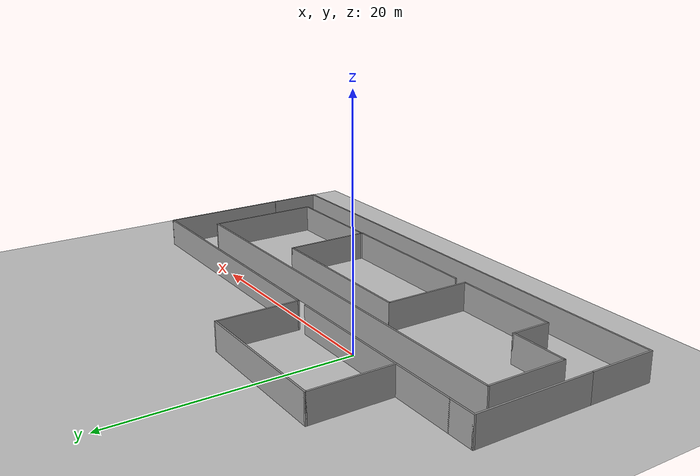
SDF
<sdf version="1.6">
 <world name="default">
  <light name="sun" type="directional">
   <pose>0 0 10 0 -0 0</pose>
   <diffuse>0.8 0.8 0.8 1</diffuse>
   <specular>0.1 0.1 0.1 1</specular>
   <attenuation>
    <range>1000</range>
    <constant>0.9</constant>
    <linear>0.01</linear>
    <quadratic>0.001</quadratic>
   </attenuation>
   <direction>-0.5 0.5 -1</direction>
  </light>
  <model name="ground_plane">
   <static>1</static>
   <link name="link">
    <collision name="collision">
     <geometry><plane><normal>0 0 1</normal><size>100 100</size></plane></geometry>
     <surface><friction><ode><mu>100</mu><mu2>50</mu2></ode></friction></surface>
    </collision>
    <visual name="visual">
     <cast_shadows>0</cast_shadows>
     <geometry><plane><normal>0 0 1</normal><size>100 100</size></plane></geometry>
     <material>
      <script><uri>file://media/materials/scripts/gazebo.material</uri><name>Gazebo/Grey</name></script>
     </material>
    </visual>
   </link>
  </model>
  <gravity>0 0 -9.8</gravity>
  <magnetic_field>6e-06 2.3e-05 -4.2e-05</magnetic_field>
  <atmosphere type="adiabatic"/>
  <physics name="default_physics" default="0" type="ode">
   <max_step_size>0.001</max_step_size>
   <real_time_factor>1</real_time_factor>
   <real_time_update_rate>1000</real_time_update_rate>
  </physics>
  <scene><ambient>0.4 0.4 0.4 1</ambient><background>0.7 0.7 0.7 1</background><shadows>1</shadows></scene>
  <spherical_coordinates>
   <surface_model>EARTH_WGS84</surface_model>
   <latitude_deg>0</latitude_deg>
   <longitude_deg>0</longitude_deg>
   <elevation>0</elevation>
   <heading_deg>0</heading_deg>
  </spherical_coordinates>
  <model name="office">
   <pose>7.83519 -3.40056 0 0 -0 0</pose>
   <link name="Wall_10">
    <collision name="Wall_10_Collision">
     <geometry><box><size>13.25 0.15 2.5</size></box></geometry>
     <pose>0 0 1.25 0 -0 0</pose>
    </collision>
    <visual name="Wall_10_Visual">
     <pose>0 0 1.25 0 -0 0</pose>
     <geometry><box><size>13.25 0.15 2.5</size></box></geometry>
     <material>
      <script><uri>file://media/materials/scripts/gazebo.material</uri><name>Gazebo/Grey</name></script>
      <ambient>1 1 1 1</ambient>
     </material>
    </visual>
    <pose>-8.08749 11.5399 0 0 -0 3.14159</pose>
   </link>
   <link name="Wall_11">
    <collision name="Wall_11_Collision">
     <geometry><box><size>7.25 0.15 2.5</size></box></geometry>
     <pose>0 0 1.25 0 -0 0</pose>
    </collision>
    <visual name="Wall_11_Visual">
     <pose>0 0 1.25 0 -0 0</pose>
     <geometry><box><size>7.25 0.15 2.5</size></box></geometry>
     <material>
      <script><uri>file://media/materials/scripts/gazebo.material</uri><name>Gazebo/Grey</name></script>
      <ambient>1 1 1 1</ambient>
     </material>
    </visual>
    <pose>-14.6375 7.98992 0 0 0 -1.5708</pose>
   </link>
   <link name="Wall_13">
    <collision name="Wall_13_Collision">
     <geometry><box><size>2.5 0.15 2.5</size></box></geometry>
     <pose>0 0 1.25 0 -0 0</pose>
    </collision>
    <visual name="Wall_13_Visual">
     <pose>0 0 1.25 0 -0 0</pose>
     <geometry><box><size>2.5 0.15 2.5</size></box></geometry>
     <material>
      <script><uri>file://media/materials/scripts/gazebo.material</uri><name>Gazebo/Grey</name></script>
      <ambient>1 1 1 1</ambient>
     </material>
    </visual>
    <pose>-21.6375 4.41008 0 0 -0 3.14159</pose>
   </link>
   <link name="Wall_14">
    <collision name="Wall_14_Collision">
     <geometry><box><size>10.25 0.15 2.5</size></box></geometry>
     <pose>0 0 1.25 0 -0 0</pose>
    </collision>
    <visual name="Wall_14_Visual">
     <pose>0 0 1.25 0 -0 0</pose>
     <geometry><box><size>10.25 0.15 2.5</size></box></geometry>
     <material>
      <script><uri>file://media/materials/scripts/gazebo.material</uri><name>Gazebo/Grey</name></script>
      <ambient>1 1 1 1</ambient>
     </material>
    </visual>
    <pose>-22.8125 -0.639918 0 0 0 -1.5708</pose>
   </link>
   <link name="Wall_16">
    <collision name="Wall_16_Collision">
     <geometry><box><size>7 0.15 2.5</size></box></geometry>
     <pose>0 0 1.25 0 -0 0</pose>
    </collision>
    <visual name="Wall_16_Visual">
     <pose>0 0 1.25 0 -0 0</pose>
     <geometry><box><size>7 0.15 2.5</size></box></geometry>
     <material>
      <script><uri>file://media/materials/scripts/gazebo.material</uri><name>Gazebo/Grey</name></script>
      <ambient>1 1 1 1</ambient>
     </material>
    </visual>
    <pose>-20.4736 -2.10439 0 0 0 -1.5708</pose>
   </link>
   <link name="Wall_17">
    <collision name="Wall_17_Collision">
     <geometry><box><size>5.25 0.15 2.5</size></box></geometry>
     <pose>0 0 1.25 0 -0 0</pose>
    </collision>
    <visual name="Wall_17_Visual">
     <pose>0 0 1.25 0 -0 0</pose>
     <geometry><box><size>5.25 0.15 2.5</size></box></geometry>
     <material>
      <script><uri>file://media/materials/scripts/gazebo.material</uri><name>Gazebo/Grey</name></script>
      <ambient>1 1 1 1</ambient>
     </material>
    </visual>
    <pose>-17.9236 -5.52939 0 0 -0 0</pose>
   </link>
   <link name="Wall_18">
    <collision name="Wall_18_Collision">
     <geometry><box><size>3.5 0.15 2.5</size></box></geometry>
     <pose>0 0 1.25 0 -0 0</pose>
    </collision>
    <visual name="Wall_18_Visual">
     <pose>0 0 1.25 0 -0 0</pose>
     <geometry><box><size>3.5 0.15 2.5</size></box></geometry>
     <material>
      <script><uri>file://media/materials/scripts/gazebo.material</uri><name>Gazebo/Grey</name></script>
      <ambient>1 1 1 1</ambient>
     </material>
    </visual>
    <pose>-15.3736 -7.20439 0 0 0 -1.5708</pose>
   </link>
   <link name="Wall_19">
    <collision name="Wall_19_Collision">
     <geometry><box><size>9.75 0.15 2.5</size></box></geometry>
     <pose>0 0 1.25 0 -0 0</pose>
    </collision>
    <visual name="Wall_19_Visual">
     <pose>0 0 1.25 0 -0 0</pose>
     <geometry><box><size>9.75 0.15 2.5</size></box></geometry>
     <material>
      <script><uri>file://media/materials/scripts/gazebo.material</uri><name>Gazebo/Grey</name></script>
      <ambient>1 1 1 1</ambient>
     </material>
    </visual>
    <pose>-10.5736 -8.8794 0 0 -0 0</pose>
   </link>
   <link name="Wall_2">
    <collision name="Wall_2_Collision">
     <geometry><box><size>40 0.15 2.5</size></box></geometry>
     <pose>0 0 1.25 0 -0 0</pose>
    </collision>
    <visual name="Wall_2_Visual">
     <pose>0 0 1.25 0 -0 0</pose>
     <geometry><box><size>40 0.15 2.5</size></box></geometry>
     <material>
      <script><uri>file://media/materials/scripts/gazebo.material</uri><name>Gazebo/Grey</name></script>
      <ambient>1 1 1 1</ambient>
     </material>
    </visual>
    <pose>-0.548645 1.32061 0 0 -0 0</pose>
   </link>
   <link name="Wall_21">
    <collision name="Wall_21_Collision">
     <geometry><box><size>6 0.15 2.5</size></box></geometry>
     <pose>0 0 1.25 0 -0 0</pose>
    </collision>
    <visual name="Wall_21_Visual">
     <pose>0 0 1.25 0 -0 0</pose>
     <geometry><box><size>6 0.15 2.5</size></box></geometry>
     <material>
      <script><uri>file://media/materials/scripts/gazebo.material</uri><name>Gazebo/Grey</name></script>
      <ambient>1 1 1 1</ambient>
     </material>
    </visual>
    <pose>-22.8125 -8.61492 0 0 0 -1.5708</pose>
   </link>
   <link name="Wall_22">
    <collision name="Wall_22_Collision">
     <geometry><box><size>45.75 0.15 2.5</size></box></geometry>
     <pose>0 0 1.25 0 -0 0</pose>
    </collision>
    <visual name="Wall_22_Visual">
     <pose>0 0 1.25 0 -0 0</pose>
     <geometry><box><size>45.75 0.15 2.5</size></box></geometry>
     <material>
      <script><uri>file://media/materials/scripts/gazebo.material</uri><name>Gazebo/Grey</name></script>
      <ambient>1 1 1 1</ambient>
     </material>
    </visual>
    <pose>-0.012512 -11.5399 0 0 -0 0</pose>
   </link>
   <link name="Wall_23">
    <collision name="Wall_23_Collision">
     <geometry><box><size>4.75 0.15 2.5</size></box></geometry>
     <pose>0 0 1.25 0 -0 0</pose>
    </collision>
    <visual name="Wall_23_Visual">
     <pose>0 0 1.25 0 -0 0</pose>
     <geometry><box><size>4.75 0.15 2.5</size></box></geometry>
     <material>
      <script><uri>file://media/materials/scripts/gazebo.material</uri><name>Gazebo/Grey</name></script>
      <ambient>1 1 1 1</ambient>
     </material>
    </visual>
    <pose>22.7875 -9.23992 0 0 -0 1.5708</pose>
   </link>
   <link name="Wall_25">
    <collision name="Wall_25_Collision">
     <geometry><box><size>7.75 0.15 2.5</size></box></geometry>
     <pose>0 0 1.25 0 -0 0</pose>
    </collision>
    <visual name="Wall_25_Visual">
     <pose>0 0 1.25 0 -0 0</pose>
     <geometry><box><size>7.75 0.15 2.5</size></box></geometry>
     <material>
      <script><uri>file://media/materials/scripts/gazebo.material</uri><name>Gazebo/Grey</name></script>
      <ambient>1 1 1 1</ambient>
     </material>
    </visual>
    <pose>-5.77365 -5.07939 0 0 -0 1.5708</pose>
   </link>
   <link name="Wall_26">
    <collision name="Wall_26_Collision">
     <geometry><box><size>15.25 0.15 2.5</size></box></geometry>
     <pose>0 0 1.25 0 -0 0</pose>
    </collision>
    <visual name="Wall_26_Visual">
     <pose>0 0 1.25 0 -0 0</pose>
     <geometry><box><size>15.25 0.15 2.5</size></box></geometry>
     <material>
      <script><uri>file://media/materials/scripts/gazebo.material</uri><name>Gazebo/Grey</name></script>
      <ambient>1 1 1 1</ambient>
     </material>
    </visual>
    <pose>1.77635 -1.27939 0 0 -0 0</pose>
   </link>
   <link name="Wall_27">
    <collision name="Wall_27_Collision">
     <geometry><box><size>7.5 0.15 2.5</size></box></geometry>
     <pose>0 0 1.25 0 -0 0</pose>
    </collision>
    <visual name="Wall_27_Visual">
     <pose>0 0 1.25 0 -0 0</pose>
     <geometry><box><size>7.5 0.15 2.5</size></box></geometry>
     <material>
      <script><uri>file://media/materials/scripts/gazebo.material</uri><name>Gazebo/Grey</name></script>
      <ambient>1 1 1 1</ambient>
     </material>
    </visual>
    <pose>9.32635 -4.95439 0 0 0 -1.5708</pose>
   </link>
   <link name="Wall_29">
    <collision name="Wall_29_Collision">
     <geometry><box><size>14 0.15 2.5</size></box></geometry>
     <pose>0 0 1.25 0 -0 0</pose>
    </collision>
    <visual name="Wall_29_Visual">
     <pose>0 0 1.25 0 -0 0</pose>
     <geometry><box><size>14 0.15 2.5</size></box></geometry>
     <material>
      <script><uri>file://media/materials/scripts/gazebo.material</uri><name>Gazebo/Grey</name></script>
      <ambient>1 1 1 1</ambient>
     </material>
    </visual>
    <pose>2.32572 -8.82622 0 0 -0 0</pose>
   </link>
   <link name="Wall_30">
    <collision name="Wall_30_Collision">
     <geometry><box><size>0.360854 0.15 2.5</size></box></geometry>
     <pose>0 0 1.25 0 -0 0</pose>
    </collision>
    <visual name="Wall_30_Visual">
     <pose>0 0 1.25 0 -0 0</pose>
     <geometry><box><size>0.360854 0.15 2.5</size></box></geometry>
     <material>
      <script><uri>file://media/materials/scripts/gazebo.material</uri><name>Gazebo/Grey</name></script>
      <ambient>1 1 1 1</ambient>
     </material>
    </visual>
    <pose>9.28854 -8.72781 0 0 -0 1.20392</pose>
   </link>
   <link name="Wall_32">
    <collision name="Wall_32_Collision">
     <geometry><box><size>10.25 0.15 2.5</size></box></geometry>
     <pose>0 0 1.25 0 -0 0</pose>
    </collision>
    <visual name="Wall_32_Visual">
     <pose>0 0 1.25 0 -0 0</pose>
     <geometry><box><size>10.25 0.15 2.5</size></box></geometry>
     <material>
      <script><uri>file://media/materials/scripts/gazebo.material</uri><name>Gazebo/Grey</name></script>
      <ambient>1 1 1 1</ambient>
     </material>
    </visual>
    <pose>19.3764 -3.72939 0 0 0 -1.5708</pose>
   </link>
   <link name="Wall_33">
    <collision name="Wall_33_Collision">
     <geometry><box><size>10 0.15 2.5</size></box></geometry>
     <pose>0 0 1.25 0 -0 0</pose>
    </collision>
    <visual name="Wall_33_Visual">
     <pose>0 0 1.25 0 -0 0</pose>
     <geometry><box><size>10 0.15 2.5</size></box></geometry>
     <material>
      <script><uri>file://media/materials/scripts/gazebo.material</uri><name>Gazebo/Grey</name></script>
      <ambient>1 1 1 1</ambient>
     </material>
    </visual>
    <pose>14.4514 -8.77939 0 0 -0 3.14159</pose>
   </link>
   <link name="Wall_4">
    <collision name="Wall_4_Collision">
     <geometry><box><size>18 0.15 2.5</size></box></geometry>
     <pose>0 0 1.25 0 -0 0</pose>
    </collision>
    <visual name="Wall_4_Visual">
     <pose>0 0 1.25 0 -0 0</pose>
     <geometry><box><size>18 0.15 2.5</size></box></geometry>
     <material>
      <script><uri>file://media/materials/scripts/gazebo.material</uri><name>Gazebo/Grey</name></script>
      <ambient>1 1 1 1</ambient>
     </material>
    </visual>
    <pose>-11.5375 4.41008 0 0 -0 0</pose>
   </link>
   <link name="Wall_6">
    <collision name="Wall_6_Collision">
     <geometry><box><size>24.5 0.15 2.5</size></box></geometry>
     <pose>0 0 1.25 0 -0 0</pose>
    </collision>
    <visual name="Wall_6_Visual">
     <pose>0 0 1.25 0 -0 0</pose>
     <geometry><box><size>24.5 0.15 2.5</size></box></geometry>
     <material>
      <script><uri>file://media/materials/scripts/gazebo.material</uri><name>Gazebo/Grey</name></script>
      <ambient>1 1 1 1</ambient>
     </material>
    </visual>
    <pose>10.6375 4.43992 0 0 -0 0</pose>
   </link>
   <link name="Wall_7">
    <collision name="Wall_7_Collision">
     <geometry><box><size>11.75 0.15 2.5</size></box></geometry>
     <pose>0 0 1.25 0 -0 0</pose>
    </collision>
    <visual name="Wall_7_Visual">
     <pose>0 0 1.25 0 -0 0</pose>
     <geometry><box><size>11.75 0.15 2.5</size></box></geometry>
     <material>
      <script><uri>file://media/materials/scripts/gazebo.material</uri><name>Gazebo/Grey</name></script>
      <ambient>1 1 1 1</ambient>
     </material>
    </visual>
    <pose>22.8125 -1.36008 0 0 0 -1.5708</pose>
   </link>
   <link name="Wall_9">
    <collision name="Wall_9_Collision">
     <geometry><box><size>7.25 0.15 2.5</size></box></geometry>
     <pose>0 0 1.25 0 -0 0</pose>
    </collision>
    <visual name="Wall_9_Visual">
     <pose>0 0 1.25 0 -0 0</pose>
     <geometry><box><size>7.25 0.15 2.5</size></box></geometry>
     <material>
      <script><uri>file://media/materials/scripts/gazebo.material</uri><name>Gazebo/Grey</name></script>
      <ambient>1 1 1 1</ambient>
     </material>
    </visual>
    <pose>-1.53749 7.98992 0 0 -0 1.5708</pose>
   </link>
   <static>1</static>
  </model>
 </world>
</sdf>
